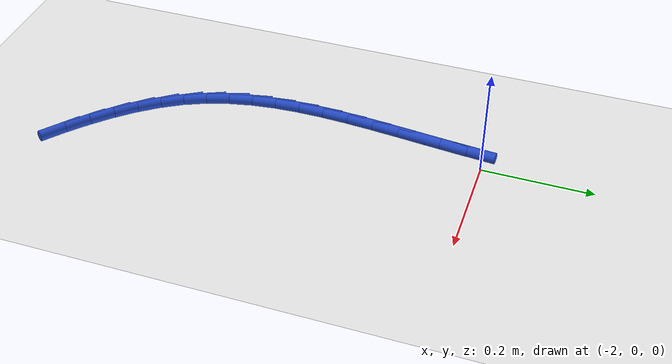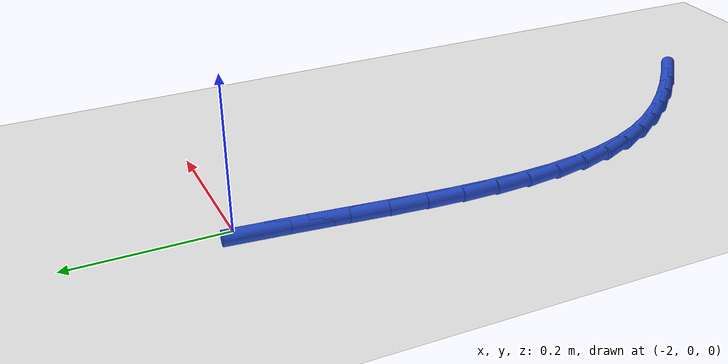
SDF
<sdf version="1.6">
 <world name="default">
  <model name="ground_plane">
   <static>1</static>
   <link name="link">
    <collision name="collision">
     <geometry><plane><normal>0 0 1</normal><size>100 100</size></plane></geometry>
     <surface><friction><ode><mu>100</mu><mu2>50</mu2></ode></friction></surface>
    </collision>
    <visual name="visual">
     <cast_shadows>0</cast_shadows>
     <geometry><plane><normal>0 0 1</normal><size>100 100</size></plane></geometry>
     <material>
      <script><uri>file://media/materials/scripts/gazebo.material</uri><name>Gazebo/WhiteGlow</name></script>
     </material>
    </visual>
   </link>
  </model>
  <model name="line">
   <link name="link_69">
    <pose>-2.0306143178010094 -0.01947847520532467 0.01 0 1.57 1.4791299205607695</pose>
    <collision name="collision">
     <geometry><cylinder><radius>0.01</radius><length>0.08</length></cylinder></geometry>
    </collision>
    <visual name="visual">
     <material>
      <script><name>Gazebo/Blue</name><uri>file://media/materials/scripts/gazebo.material</uri></script>
     </material>
     <geometry><cylinder><radius>0.01</radius><length>0.08</length></cylinder></geometry>
    </visual>
   </link>
   <link name="link_70">
    <pose>-2.035277880113161 -0.07021126774906124 0.01 0 1.57 1.4679342129158153</pose>
    <collision name="collision">
     <geometry><cylinder><radius>0.01</radius><length>0.08</length></cylinder></geometry>
    </collision>
    <visual name="visual">
     <material>
      <script><name>Gazebo/Blue</name><uri>file://media/materials/scripts/gazebo.material</uri></script>
     </material>
     <geometry><cylinder><radius>0.01</radius><length>0.08</length></cylinder></geometry>
    </visual>
   </link>
   <link name="link_71">
    <pose>-2.040467685912013 -0.12048720416214555 0.01 0 1.57 1.466608077840592</pose>
    <collision name="collision">
     <geometry><cylinder><radius>0.01</radius><length>0.08</length></cylinder></geometry>
    </collision>
    <visual name="visual">
     <material>
      <script><name>Gazebo/Blue</name><uri>file://media/materials/scripts/gazebo.material</uri></script>
     </material>
     <geometry><cylinder><radius>0.01</radius><length>0.08</length></cylinder></geometry>
    </visual>
   </link>
   <link name="link_72">
    <pose>-2.0456649945344427 -0.17019040125537221 0.01 0 1.57 1.4754803716861484</pose>
    <collision name="collision">
     <geometry><cylinder><radius>0.01</radius><length>0.08</length></cylinder></geometry>
    </collision>
    <visual name="visual">
     <material>
      <script><name>Gazebo/Blue</name><uri>file://media/materials/scripts/gazebo.material</uri></script>
     </material>
     <geometry><cylinder><radius>0.01</radius><length>0.08</length></cylinder></geometry>
    </visual>
   </link>
   <link name="link_73">
    <pose>-2.050351065317325 -0.21920497583953613 0.01 0 1.57 1.4951045164778929</pose>
    <collision name="collision">
     <geometry><cylinder><radius>0.01</radius><length>0.08</length></cylinder></geometry>
    </collision>
    <visual name="visual">
     <material>
      <script><name>Gazebo/Blue</name><uri>file://media/materials/scripts/gazebo.material</uri></script>
     </material>
     <geometry><cylinder><radius>0.01</radius><length>0.08</length></cylinder></geometry>
    </visual>
   </link>
   <link name="link_74">
    <pose>-2.0540071575975354 -0.26741504472542993 0.01 0 1.57 1.5262627248158491</pose>
    <collision name="collision">
     <geometry><cylinder><radius>0.01</radius><length>0.08</length></cylinder></geometry>
    </collision>
    <visual name="visual">
     <material>
      <script><name>Gazebo/Blue</name><uri>file://media/materials/scripts/gazebo.material</uri></script>
     </material>
     <geometry><cylinder><radius>0.01</radius><length>0.08</length></cylinder></geometry>
    </visual>
   </link>
   <link name="link_75">
    <pose>-2.0561145307119486 -0.31470472472384836 0.01 0 1.57 1.5699334006370116</pose>
    <collision name="collision">
     <geometry><cylinder><radius>0.01</radius><length>0.08</length></cylinder></geometry>
    </collision>
    <visual name="visual">
     <material>
      <script><name>Gazebo/Blue</name><uri>file://media/materials/scripts/gazebo.material</uri></script>
     </material>
     <geometry><cylinder><radius>0.01</radius><length>0.08</length></cylinder></geometry>
    </visual>
   </link>
   <link name="link_76">
    <pose>-2.0561544439974426 -0.36095813264558574 0.01 0 1.57 -1.514399068019422</pose>
    <collision name="collision">
     <geometry><cylinder><radius>0.01</radius><length>0.08</length></cylinder></geometry>
    </collision>
    <visual name="visual">
     <material>
      <script><name>Gazebo/Blue</name><uri>file://media/materials/scripts/gazebo.material</uri></script>
     </material>
     <geometry><cylinder><radius>0.01</radius><length>0.08</length></cylinder></geometry>
    </visual>
   </link>
   <link name="link_77">
    <pose>-2.053608156790892 -0.40605938530143604 0.01 0 1.57 -1.4425779014602589</pose>
    <collision name="collision">
     <geometry><cylinder><radius>0.01</radius><length>0.08</length></cylinder></geometry>
    </collision>
    <visual name="visual">
     <material>
      <script><name>Gazebo/Blue</name><uri>file://media/materials/scripts/gazebo.material</uri></script>
     </material>
     <geometry><cylinder><radius>0.01</radius><length>0.08</length></cylinder></geometry>
    </visual>
   </link>
   <link name="link_78">
    <pose>-2.0479569284291723 -0.44989259950219407 0.01 0 1.57 -1.3556830743003094</pose>
    <collision name="collision">
     <geometry><cylinder><radius>0.01</radius><length>0.08</length></cylinder></geometry>
    </collision>
    <visual name="visual">
     <material>
      <script><name>Gazebo/Blue</name><uri>file://media/materials/scripts/gazebo.material</uri></script>
     </material>
     <geometry><cylinder><radius>0.01</radius><length>0.08</length></cylinder></geometry>
    </visual>
   </link>
   <link name="link_79">
    <pose>-2.03868201824916 -0.49234189205865264 0.01 0 1.57 -1.2541643250261785</pose>
    <collision name="collision">
     <geometry><cylinder><radius>0.01</radius><length>0.08</length></cylinder></geometry>
    </collision>
    <visual name="visual">
     <material>
      <script><name>Gazebo/Blue</name><uri>file://media/materials/scripts/gazebo.material</uri></script>
     </material>
     <geometry><cylinder><radius>0.01</radius><length>0.08</length></cylinder></geometry>
    </visual>
   </link>
   <link name="link_80">
    <pose>-2.025264685587731 -0.5332913797816068 0.01 0 1.57 -1.1400347652744238</pose>
    <collision name="collision">
     <geometry><cylinder><radius>0.01</radius><length>0.08</length></cylinder></geometry>
    </collision>
    <visual name="visual">
     <material>
      <script><name>Gazebo/Blue</name><uri>file://media/materials/scripts/gazebo.material</uri></script>
     </material>
     <geometry><cylinder><radius>0.01</radius><length>0.08</length></cylinder></geometry>
    </visual>
   </link>
   <link name="link_81">
    <pose>-2.0071888839568413 -0.5726256708765035 0.01 0 1.57 -1.0243611437298699</pose>
    <collision name="collision">
     <geometry><cylinder><radius>0.01</radius><length>0.08</length></cylinder></geometry>
    </collision>
    <visual name="visual">
     <material>
      <script><name>Gazebo/Blue</name><uri>file://media/materials/scripts/gazebo.material</uri></script>
     </material>
     <geometry><cylinder><radius>0.01</radius><length>0.08</length></cylinder></geometry>
    </visual>
   </link>
   <link name="link_82">
    <pose>-1.9842800178895819 -0.610291651315112 0.01 0 1.57 -0.9238509206600711</pose>
    <collision name="collision">
     <geometry><cylinder><radius>0.01</radius><length>0.08</length></cylinder></geometry>
    </collision>
    <visual name="visual">
     <material>
      <script><name>Gazebo/Blue</name><uri>file://media/materials/scripts/gazebo.material</uri></script>
     </material>
     <geometry><cylinder><radius>0.01</radius><length>0.08</length></cylinder></geometry>
    </visual>
   </link>
   <link name="link_83">
    <pose>-1.9570351204867271 -0.6463587064158225 0.01 0 1.57 -0.8394397360357235</pose>
    <collision name="collision">
     <geometry><cylinder><radius>0.01</radius><length>0.08</length></cylinder></geometry>
    </collision>
    <visual name="visual">
     <material>
      <script><name>Gazebo/Blue</name><uri>file://media/materials/scripts/gazebo.material</uri></script>
     </material>
     <geometry><cylinder><radius>0.01</radius><length>0.08</length></cylinder></geometry>
    </visual>
   </link>
   <link name="link_84">
    <pose>-1.9260295874808315 -0.680910514175532 0.01 0 1.57 -0.7694952050078162</pose>
    <collision name="collision">
     <geometry><cylinder><radius>0.01</radius><length>0.08</length></cylinder></geometry>
    </collision>
    <visual name="visual">
     <material>
      <script><name>Gazebo/Blue</name><uri>file://media/materials/scripts/gazebo.material</uri></script>
     </material>
     <geometry><cylinder><radius>0.01</radius><length>0.08</length></cylinder></geometry>
    </visual>
   </link>
   <link name="link_85">
    <pose>-1.891838814604451 -0.7140307525911375 0.01 0 1.57 -0.7122018706423913</pose>
    <collision name="collision">
     <geometry><cylinder><radius>0.01</radius><length>0.08</length></cylinder></geometry>
    </collision>
    <visual name="visual">
     <material>
      <script><name>Gazebo/Blue</name><uri>file://media/materials/scripts/gazebo.material</uri></script>
     </material>
     <geometry><cylinder><radius>0.01</radius><length>0.08</length></cylinder></geometry>
    </visual>
   </link>
   <link name="link_86">
    <pose>-1.8550381975901409 -0.7458030996595356 0.01 0 1.57 -0.6658875256018496</pose>
    <collision name="collision">
     <geometry><cylinder><radius>0.01</radius><length>0.08</length></cylinder></geometry>
    </collision>
    <visual name="visual">
     <material>
      <script><name>Gazebo/Blue</name><uri>file://media/materials/scripts/gazebo.material</uri></script>
     </material>
     <geometry><cylinder><radius>0.01</radius><length>0.08</length></cylinder></geometry>
    </visual>
   </link>
  </model>
 </world>
</sdf>
